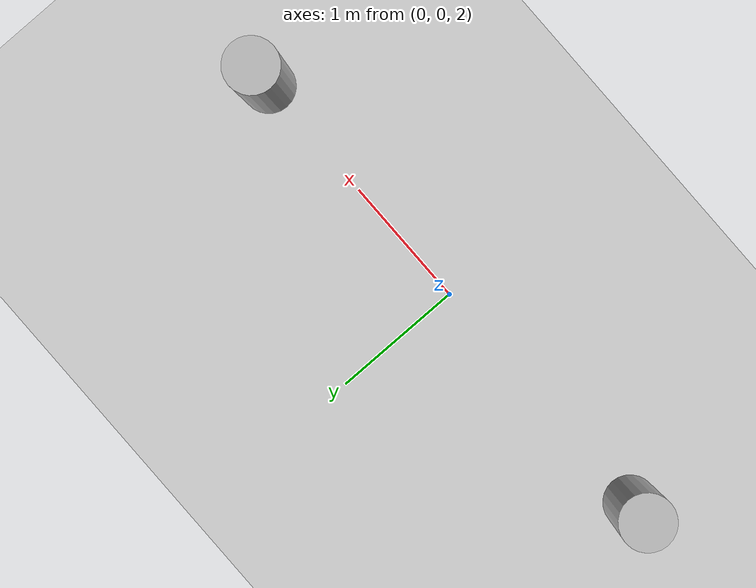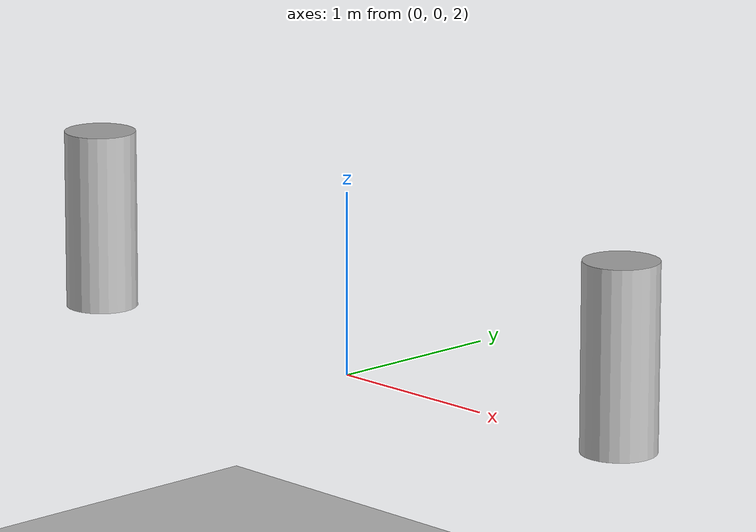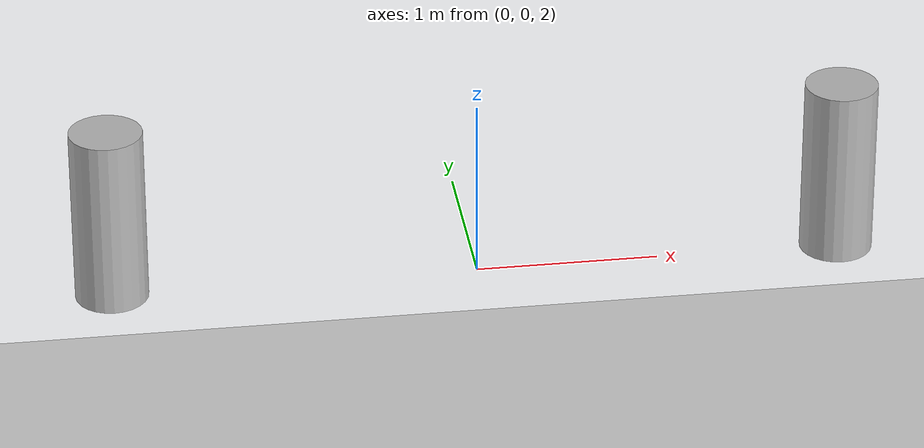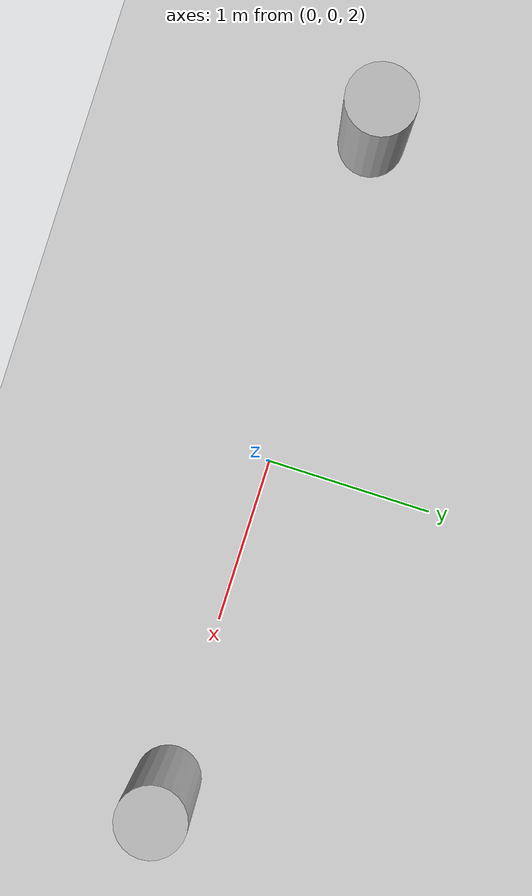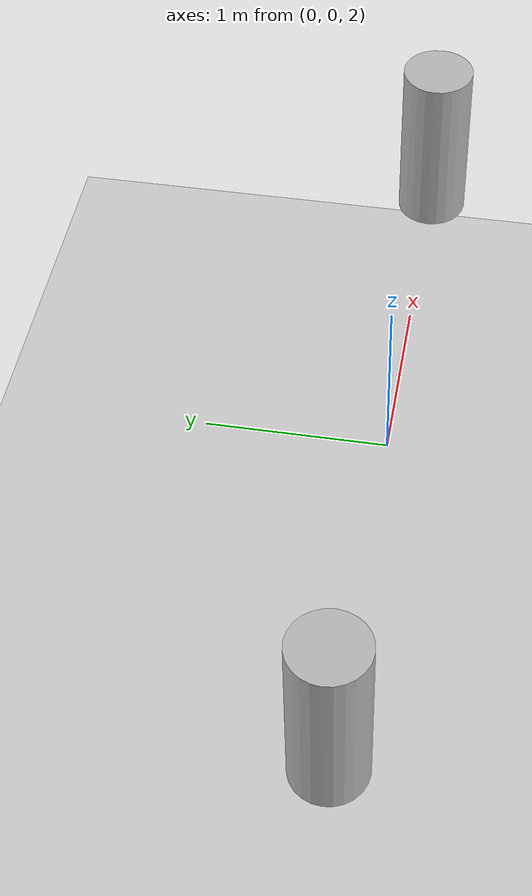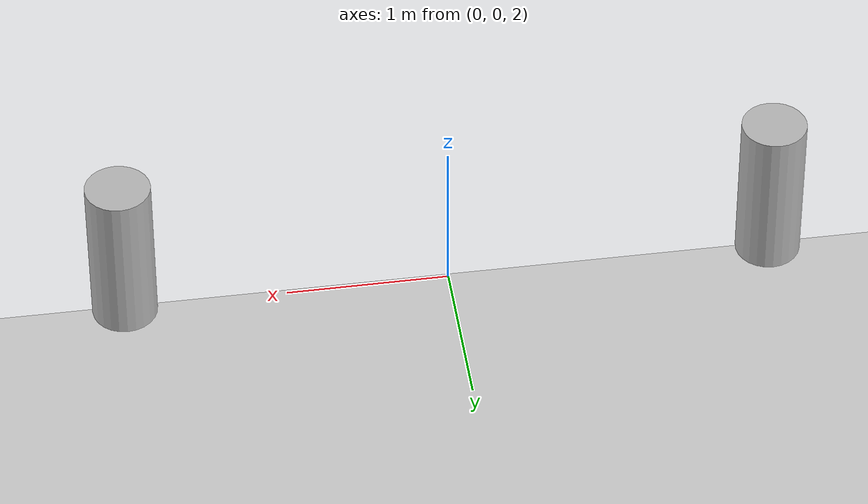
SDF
<?xml version="1.0" ?>
<sdf version="1.5">
  <world name="Trial">
    <include>
      <uri>model://ground_plane</uri>
    </include>
    <include>
      <uri>model://sun</uri>
    </include>
    <include>
      <uri>model://reflector_1</uri>
      <name>reflector</name>
      <pose>-2.0 0 0 0 0 0</pose>
    </include>
    <include>
      <uri>model://reflector_1</uri>
      <name>reflector</name>
      <pose>2.0 0 0 0 0 0</pose>
    </include>
  </world>
</sdf>

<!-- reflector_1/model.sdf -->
<sdf version="1.6">
  <model name="reflector_1">
    <static>true</static>
    <link name="link">
      <pose>0 0 2.5 0 0 0</pose>
      <collision name="collision">
        <laser_retro>200</laser_retro>
        <geometry>
          <cylinder>
            <radius>0.2</radius>
            <length>1</length>
          </cylinder>
        </geometry>
      </collision>

      <visual name="visual">
        <geometry>
          <cylinder>
            <radius>0.2</radius>
            <length>1</length>
          </cylinder>
        </geometry>
      </visual>
    </link>
  </model>
</sdf>
